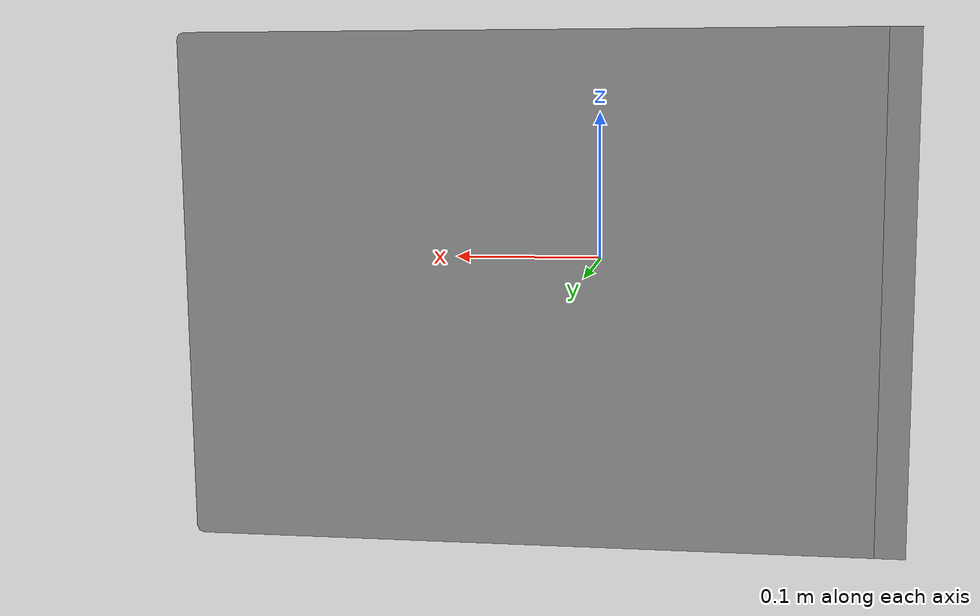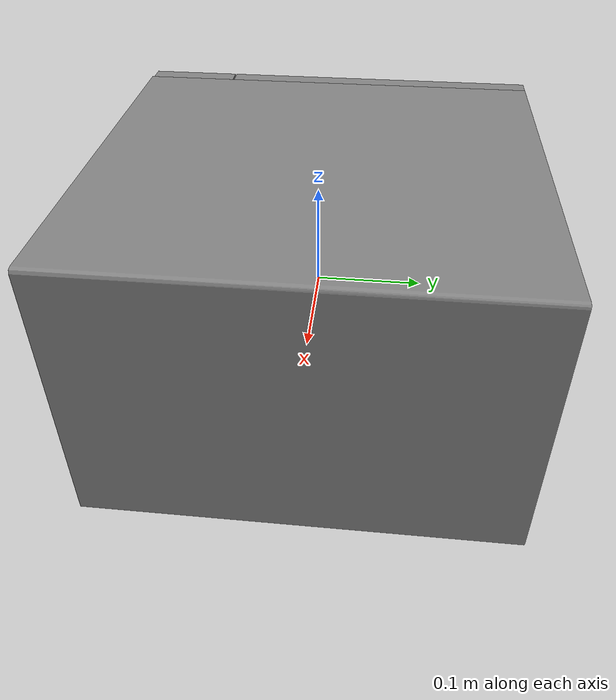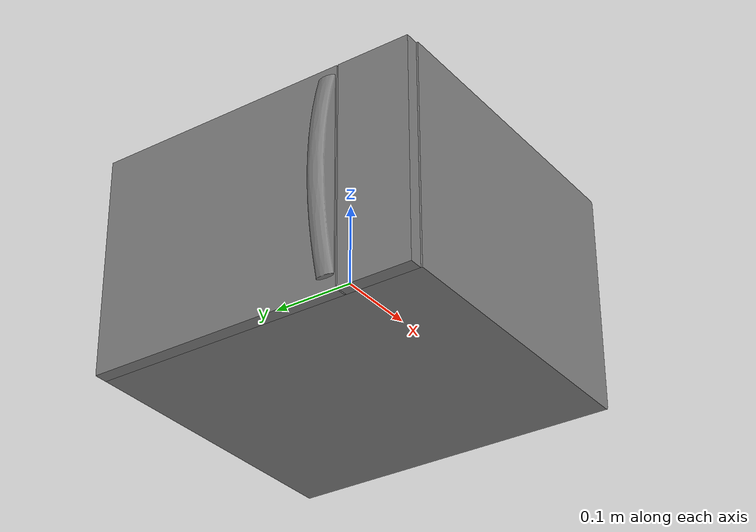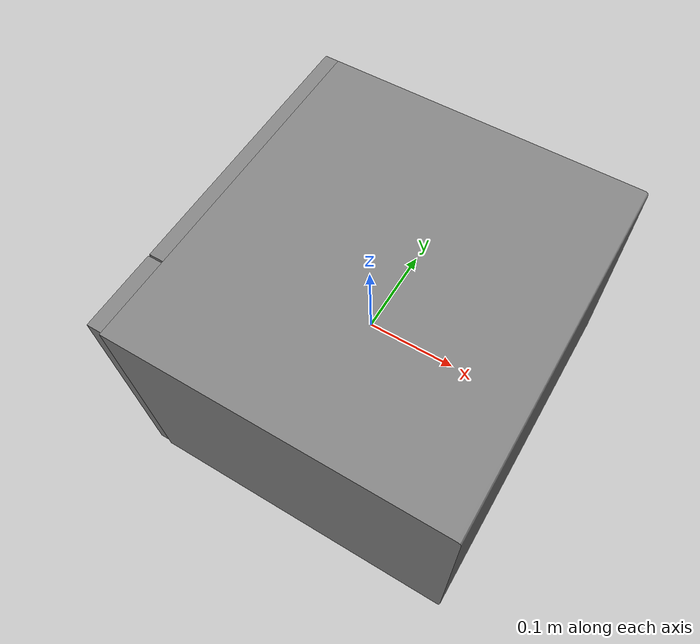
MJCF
<mujoco model="partnet_c3bb5f3c842a6c2d178e7d331e641179">
    <compiler angle="radian" />
    <size njmax="500" nconmax="100" />
    <asset>
        <mesh scale="0.3 0.3 0.3" name="original-1.obj.convex" file="original-1.obj.convex.stl" />
        <mesh scale="0.3 0.3 0.3" name="original-8.obj.convex" file="original-8.obj.convex.stl" />
        <mesh scale="0.3 0.3 0.3" name="original-16.obj.convex" file="original-16.obj.convex.stl" />
        <mesh scale="0.3 0.3 0.3" name="original-9.obj.convex" file="original-9.obj.convex.stl" />
        <mesh scale="0.3 0.3 0.3" name="original-10.obj.convex" file="original-10.obj.convex.stl" />
        <mesh scale="0.3 0.3 0.3" name="original-11.obj.convex" file="original-11.obj.convex.stl" />
        <mesh scale="0.3 0.3 0.3" name="original-12.obj.convex" file="original-12.obj.convex.stl" />
        <mesh scale="0.3 0.3 0.3" name="original-13.obj.convex" file="original-13.obj.convex.stl" />
        <mesh scale="0.3 0.3 0.3" name="original-14.obj.convex" file="original-14.obj.convex.stl" />
        <mesh scale="0.3 0.3 0.3" name="original-15.obj.convex" file="original-15.obj.convex.stl" />
        <mesh scale="0.3 0.3 0.3" name="original-3.obj.convex" file="original-3.obj.convex.stl" />
        <mesh scale="0.3 0.3 0.3" name="original-6.obj.convex" file="original-6.obj.convex.stl" />
        <mesh scale="0.3 0.3 0.3" name="original-18.obj.convex" file="original-18.obj.convex.stl" />
        <mesh scale="0.3 0.3 0.3" name="original-20.obj.convex" file="original-20.obj.convex.stl" />
        <mesh scale="0.3 0.3 0.3" name="original-19.obj.convex" file="original-19.obj.convex.stl" />
        <mesh scale="0.3 0.3 0.3" name="original-4.obj.convex" file="original-4.obj.convex.stl" />
        <mesh scale="0.3 0.3 0.3" name="original-2.obj.convex" file="original-2.obj.convex.stl" />
        <mesh scale="0.3 0.3 0.3" name="original-5.obj.convex" file="original-5.obj.convex.stl" />
    </asset>
    <worldbody>
    <body>
        <body name="object">
        <geom quat="0.5 0.5 -0.5 -0.5" type="mesh" mesh="original-4.obj.convex" contype="0" conaffinity="0" group="0" />
        <geom quat="0.5 0.5 -0.5 -0.5" type="mesh" mesh="original-2.obj.convex" contype="0" conaffinity="0" group="0" />
        <geom quat="0.5 0.5 -0.5 -0.5" type="mesh" mesh="original-5.obj.convex" contype="0" conaffinity="0" group="0" />
        <body name="link_0" pos="-0.049319999999999996 0.0579 -0.03834" quat="0.5 0.5 -0.5 -0.5">
            <inertial pos="0.04665 0.03999 0.0013331999999999999" quat="-0.000472274 0.701823 0.00050564 0.712351" mass="62.2208" diaginertia="9.46003 5.72577 3.77786" />
            <joint name="joint_0" pos="0.0 0.0 0.0" axis="0 -1 0" limited="true" range="0 1.5708" />
            <geom pos="0.0579 0.03834 -0.049319999999999996" type="mesh" mesh="original-1.obj.convex" group="0" />
            <geom pos="0.0579 0.03834 -0.049319999999999996" type="mesh" mesh="original-8.obj.convex" group="0" />
            <geom pos="0.0579 0.03834 -0.049319999999999996" type="mesh" mesh="original-16.obj.convex" group="0" />
            <geom pos="0.0579 0.03834 -0.049319999999999996" type="mesh" mesh="original-9.obj.convex" group="0" />
            <geom pos="0.0579 0.03834 -0.049319999999999996" type="mesh" mesh="original-10.obj.convex" group="0" />
            <geom pos="0.0579 0.03834 -0.049319999999999996" type="mesh" mesh="original-11.obj.convex" group="0" />
            <geom pos="0.0579 0.03834 -0.049319999999999996" type="mesh" mesh="original-12.obj.convex" group="0" />
            <geom pos="0.0579 0.03834 -0.049319999999999996" type="mesh" mesh="original-13.obj.convex" group="0" />
            <geom pos="0.0579 0.03834 -0.049319999999999996" type="mesh" mesh="original-14.obj.convex" group="0" />
            <geom pos="0.0579 0.03834 -0.049319999999999996" type="mesh" mesh="original-15.obj.convex" group="0" />
            <geom pos="0.0579 0.03834 -0.049319999999999996" type="mesh" mesh="original-3.obj.convex" group="0" />
            <geom pos="0.0579 0.03834 -0.049319999999999996" type="mesh" mesh="original-6.obj.convex" group="0" />
            <geom pos="0.0579 0.03834 -0.049319999999999996" type="mesh" mesh="original-18.obj.convex" group="0" />
            <geom pos="0.0579 0.03834 -0.049319999999999996" type="mesh" mesh="original-20.obj.convex" group="0" />
            <geom pos="0.0579 0.03834 -0.049319999999999996" type="mesh" mesh="original-19.obj.convex" group="0" />
        </body>
    </body>
        <site name="bottom_site" pos="0 0 -0.3" rgba="0 0 0 0" size="0.005" />
        <site name="top_site" pos="0 0 0.3" rgba="0 0 0 0" size="0.005" />
        <site name="horizontal_radius_site" pos="0.3 0 0" rgba="0 0 0 0" size="0.1" />
    </body>
    </worldbody>
</mujoco>
